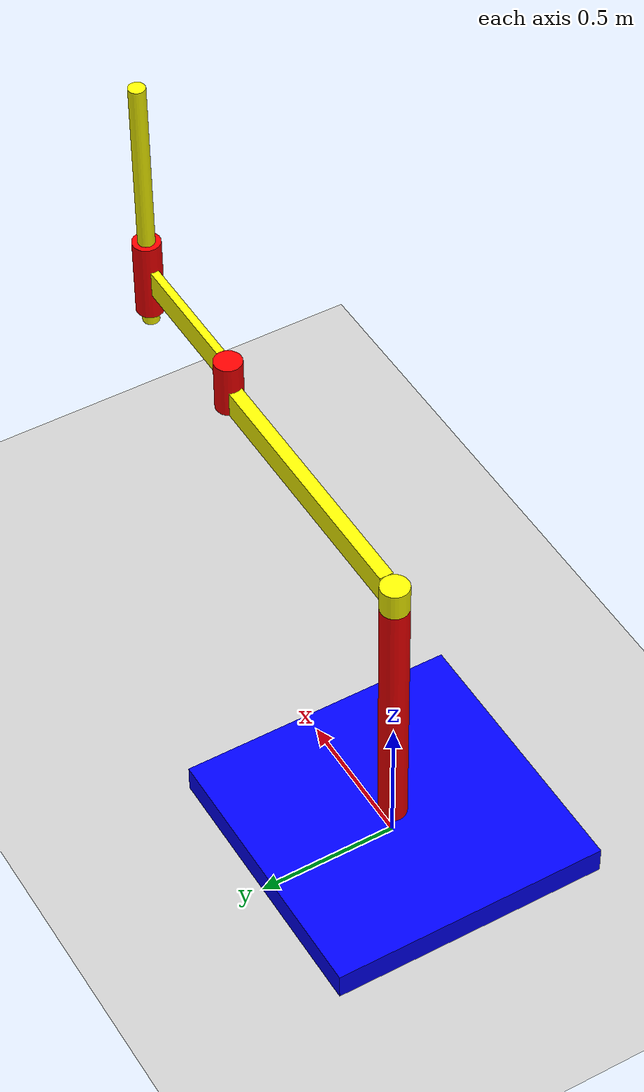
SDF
<?xml version='1.0' ?>

<!-- Try with no space between dashes - -once
    ros2 topic pub - -once /scara/arm_wrist_lift_joint_effort_controller/command std_msgs/msg/Float64 '{data: -0.01}'
-->

<sdf version='1.6'>
    <world name='scara_world'>
        <plugin
            filename='ignition-gazebo-physics-system'
            name='gz::sim::systems::Physics'>
        </plugin>
        <plugin
            filename='ignition-gazebo-scene-broadcaster-system'
            name='ignition::gazebo::systems::SceneBroadcaster'>
        </plugin>

        <light type='directional' name='sun'>
            <cast_shadows>true</cast_shadows>
            <pose>0 0 10 0 0 0</pose>
            <diffuse>0.8 0.8 0.8 1</diffuse>
            <specular>0.2 0.2 0.2 1</specular>
            <attenuation>
                <range>1000</range>
                <constant>0.9</constant>
                <linear>0.01</linear>
                <quadratic>0.001</quadratic>
            </attenuation>
            <direction>-0.5 0.1 -0.9</direction>
        </light>

        <model name='ground_plane'>
            <static>true</static>
            <link name='link'>
                <collision name='collision'>
                <geometry>
                    <plane>
                    <normal>0 0 1</normal>
                    </plane>
                </geometry>
                </collision>
                <visual name='visual'>
                <geometry>
                    <plane>
                    <normal>0 0 1</normal>
                    <size>100 100</size>
                    </plane>
                </geometry>
                <material>
                    <ambient>0.8 0.8 0.8 1</ambient>
                    <diffuse>0.8 0.8 0.8 1</diffuse>
                    <specular>0.8 0.8 0.8 1</specular>
                </material>
                </visual>
            </link>
        </model>

        <model name='scara' canonical_link='arm_base'>
            <pose>0 0 0 0 0 0</pose>
            <include merge="true">
                <uri>package://ros_gz_example_description/models/scara_open</uri>
            </include>

            <plugin
                filename="ignition-gazebo-joint-state-publisher-system"
                name="ignition::gazebo::systems::JointStatePublisher">
            </plugin>

        </model>
    </world>
</sdf>

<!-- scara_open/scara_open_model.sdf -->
<sdf version='1.6'>

    <model name='scara' canonical_link='arm_base'>
        <pose>0 0 0 0 0 0</pose>
        <link name='arm_base'>
            <inertial>
                <mass>101.0</mass>
                <inertia>
                    <ixx>8.418</ixx>
                    <ixy>0</ixy>
                    <ixz>0</ixz>
                    <iyy>8.418</iyy>
                    <iyz>0</iyz>
                    <izz>16.67</izz>
                </inertia>
            </inertial>
            <collision name='arm_base_geom'>
                <pose>0 0 0.05 0 0 0</pose>
                <geometry>
                    <box>
                        <size>1.0 1.0 0.1</size>
                    </box>
                </geometry>
            </collision>
            <visual name='arm_base_geom_visual'>
                <pose>0 0 0.05 0 0 0</pose>
                <geometry>
                    <box>
                        <size>1.0 1.0 0.1</size>
                    </box>
                </geometry>
                <material>
                    <ambient>0.0 0.0 1.0 1.0</ambient>
                    <diffuse>0.0 0.0 1.0 1.0</diffuse>
                    <specular>0.01 0.01 0.01 1.0</specular>
                </material>
            </visual>
            <collision name='arm_base_geom_arm_trunk'>
                <pose>0 0 0.6 0 0 0</pose>
                <geometry>
                    <cylinder>
                        <radius>0.05</radius>
                        <length>1.0</length>
                    </cylinder>
                </geometry>
            </collision>
            <visual name='arm_base_geom_arm_trunk_visual'>
                <pose>0 0 0.6 0 0 0</pose>
                <geometry>
                    <cylinder>
                        <radius>0.05</radius>
                        <length>1.0</length>
                    </cylinder>
                </geometry>
                <material>
                    <ambient>1.0 0.0 0.0 1.0</ambient>
                    <diffuse>1.0 0.0 0.0 1.0</diffuse>
                    <specular>0.01 0.01 0.01 1.0</specular>
                </material>
            </visual>
        </link>
        <link name='arm_shoulder_pan'>
            <pose relative_to='arm_base'>0 0 1.1 0 0 0</pose>
            <inertial>
                <pose>0.045455 0 0 0 0 0</pose>
                <inertia>
                    <ixx>0.011</ixx>
                    <ixy>0</ixy>
                    <ixz>0</ixz>
                    <iyy>0.0225</iyy>
                    <iyz>0</iyz>
                    <izz>0.0135</izz>
                </inertia>
                <mass>1.1</mass>
            </inertial>
            <collision name='arm_shoulder_pan_geom'>
                <pose>0 0 0.05 0 0 0</pose>
                <geometry>
                    <cylinder>
                        <radius>0.05</radius>
                        <length>0.1</length>
                    </cylinder>
                </geometry>
            </collision>
            <visual name='arm_shoulder_pan_geom_visual'>
                <pose>0 0 0.05 0 0 0</pose>
                <geometry>
                    <cylinder>
                        <radius>0.05</radius>
                        <length>0.1</length>
                    </cylinder>
                </geometry>
                <material>
                    <ambient>1.0 1.0 0.0 1.0</ambient>
                    <diffuse>1.0 1.0 0.0 1.0</diffuse>
                    <specular>0.01 0.01 0.01 1.0</specular>
                </material>
            </visual>
            <collision name='arm_shoulder_pan_geom_arm_shoulder'>
                <pose>0.55 0 0.05 0 0 0</pose>
                <geometry>
                    <box>
                        <size>1.0 0.05 0.1</size>
                    </box>
                </geometry>
            </collision>
            <visual name='arm_shoulder_pan_geom_arm_shoulder_visual'>
                <pose>0.55 0 0.05 0 0 0</pose>
                <geometry>
                    <box>
                        <size>1.0 0.05 0.1</size>
                    </box>
                </geometry>
                <material>
                    <ambient>1.0 1.0 0.0 1.0</ambient>
                    <diffuse>1.0 1.0 0.0 1.0</diffuse>
                    <specular>0.01 0.01 0.01 1.0</specular>
                </material>
            </visual>
        </link>
        <link name='arm_elbow_pan'>
            <pose relative_to='arm_shoulder_pan'>1.05 0 0 0 0 0</pose>
            <inertial>
                <pose>0.0875 0 0.083333 0 0 0</pose>
                <inertia>
                    <ixx>0.031</ixx>
                    <ixy>0</ixy>
                    <ixz>0.005</ixz>
                    <iyy>0.07275</iyy>
                    <iyz>0</iyz>
                    <izz>0.04475</izz>
                </inertia>
                <mass>1.2</mass>
            </inertial>
            <collision name='arm_elbow_pan_geom'>
                <pose>0 0 0.1 0 0 0</pose>
                <geometry>
                    <cylinder>
                        <radius>0.05</radius>
                        <length>0.2</length>
                    </cylinder>
                </geometry>
            </collision>
            <visual name='arm_elbow_pan_geom_visual'>
                <pose>0 0 0.1 0 0 0</pose>
                <geometry>
                    <cylinder>
                        <radius>0.05</radius>
                        <length>0.2</length>
                    </cylinder>
                </geometry>
                <material>
                    <ambient>1.0 0.0 0.0 1.0</ambient>
                    <diffuse>1.0 0.0 0.0 1.0</diffuse>
                    <specular>0.01 0.01 0.01 1.0</specular>
                </material>
            </visual>
            <collision name='arm_elbow_pan_geom_arm_elbow'>
                <pose>0.3 0 0.15 0 0 0</pose>
                <geometry>
                    <box>
                        <size>0.5 0.03 0.1</size>
                    </box>
                </geometry>
            </collision>
            <visual name='arm_elbow_pan_geom_arm_elbow_visual'>
                <pose>0.3 0 0.15 0 0 0</pose>
                <geometry>
                    <box>
                        <size>0.5 0.03 0.1</size>
                    </box>
                </geometry>
                <material>
                    <ambient>1.0 1.0 0.0 1.0</ambient>
                    <diffuse>1.0 1.0 0.0 1.0</diffuse>
                    <specular>0.01 0.01 0.01 1.0</specular>
                </material>
            </visual>
            <collision name='arm_elbow_pan_geom_arm_wrist'>
                <pose>0.55 0 0.15 0 0 0</pose>
                <geometry>
                    <cylinder>
                        <radius>0.05</radius>
                        <length>0.3</length>
                    </cylinder>
                </geometry>
            </collision>
            <visual name='arm_elbow_pan_geom_arm_wrist_visual'>
                <pose>0.55 0 0.15 0 0 0</pose>
                <geometry>
                    <cylinder>
                        <radius>0.05</radius>
                        <length>0.3</length>
                    </cylinder>
                </geometry>
                <material>
                    <ambient>1.0 0.0 0.0 1.0</ambient>
                    <diffuse>1.0 0.0 0.0 1.0</diffuse>
                    <specular>0.01 0.01 0.01 1.0</specular>
                </material>
            </visual>
        </link>
        <link name='arm_wrist_lift'>
            <pose relative_to='arm_elbow_pan'>0.55 0 -0.05 0 0 0</pose>
            <inertial>
                <pose>0 0 0 0 0 0</pose>
                <inertia>
                    <ixx>0.01</ixx>
                    <ixy>0</ixy>
                    <ixz>0</ixz>
                    <iyy>0.01</iyy>
                    <iyz>0</iyz>
                    <izz>0.001</izz>
                </inertia>
                <mass>0.001</mass>
            </inertial>
            <collision name='arm_wrist_lift_geom'>
                <pose>0 0 0.5 0 0 0</pose>
                <geometry>
                    <cylinder>
                        <radius>0.03</radius>
                        <length>1.0</length>
                    </cylinder>
                </geometry>
            </collision>
            <visual name='arm_wrist_lift_geom_visual'>
                <pose>0 0 0.5 0 0 0</pose>
                <geometry>
                    <cylinder>
                        <radius>0.03</radius>
                        <length>1.0</length>
                    </cylinder>
                </geometry>
                <material>
                    <ambient>1.0 1.0 0.0 1.0</ambient>
                    <diffuse>1.0 1.0 0.0 1.0</diffuse>
                    <specular>0.01 0.01 0.01 1.0</specular>
                </material>
            </visual>
        </link>
        <joint name='arm_shoulder_pan_joint' type='revolute'> <!-- fixed for part 2, usually revolute -->
            <parent>arm_base</parent>
            <child>arm_shoulder_pan</child>
            <axis>
                <dynamics>
                    <damping>1.000000</damping>
                    <friction>0.000000</friction>
                </dynamics>
                <limit>
                    <lower>-2.999994</lower>
                    <upper>2.999994</upper>
                </limit>
                <xyz>0 0 1</xyz>
                <use_parent_model_frame>true</use_parent_model_frame>
            </axis>
        </joint>
        <joint name='arm_elbow_pan_joint' type='revolute'>
            <parent>arm_shoulder_pan</parent>
            <child>arm_elbow_pan</child>
            <axis>
                <dynamics>
                    <damping>1.000000</damping>
                    <friction>0.000000</friction>
                </dynamics>
                <limit>
                    <lower>-2.999994</lower>
                    <upper>2.999994</upper>
                    <effort>1e6</effort> <!-- Set effort to a high value -->
                    <velocity>1000.0</velocity> <!-- Set velocity to a high value -->
                </limit>
                <xyz>0 0 1</xyz>
                <use_parent_model_frame>true</use_parent_model_frame>
            </axis>
        </joint>
        <joint name='arm_wrist_lift_joint' type='prismatic'> <!-- fixed for part 2, usually prismatic -->
            <parent>arm_elbow_pan</parent>
            <child>arm_wrist_lift</child>
            <axis>
                <dynamics>
                    <damping>0.0001</damping>
                </dynamics>
                <limit>
                    <lower>-0.8</lower>
                    <upper>0.1</upper>
                    <effort>1e10</effort>      <!-- Set effort very high -->
                    <!-- Remove or set velocity to a very high value -->
                </limit>
                <xyz>0 0 1</xyz>
                <use_parent_model_frame>true</use_parent_model_frame>
            </axis>
        </joint>

        <plugin
            filename="ignition-gazebo-apply-joint-force-system"
            name="gz::sim::systems::ApplyJointForce">
            <joint_name>arm_wrist_lift_joint</joint_name>
        </plugin>
        <plugin
            filename="ignition-gazebo-apply-joint-force-system"
            name="gz::sim::systems::ApplyJointForce">
            <joint_name>arm_elbow_pan_joint</joint_name>
        </plugin>
        <plugin
            filename="ignition-gazebo-apply-joint-force-system"
            name="gz::sim::systems::ApplyJointForce">
            <joint_name>arm_shoulder_pan_joint</joint_name>
        </plugin>

    </model>
</sdf>
